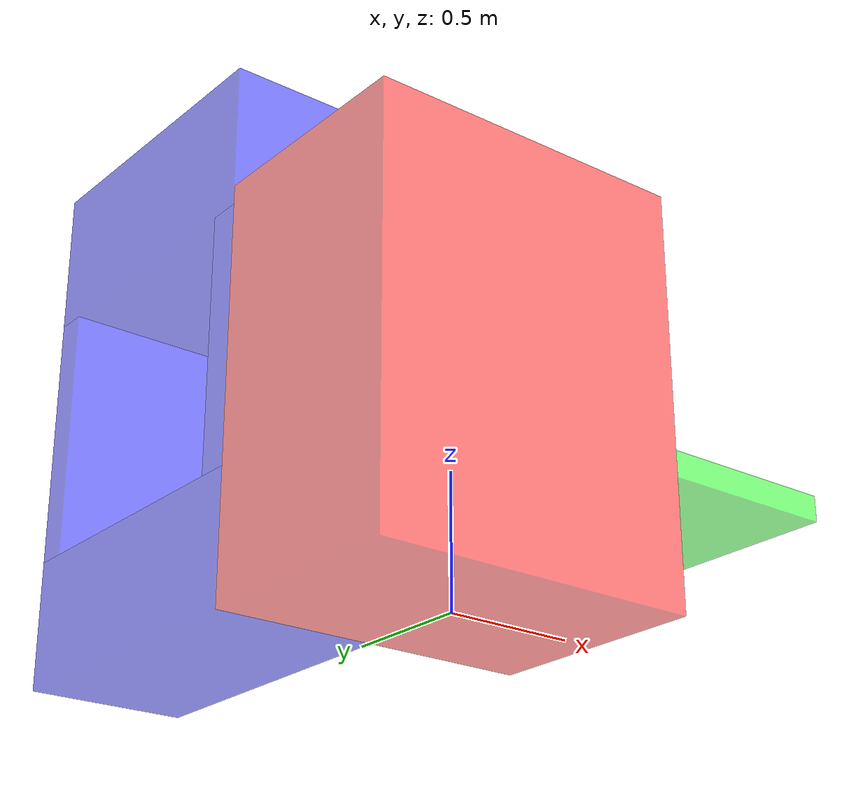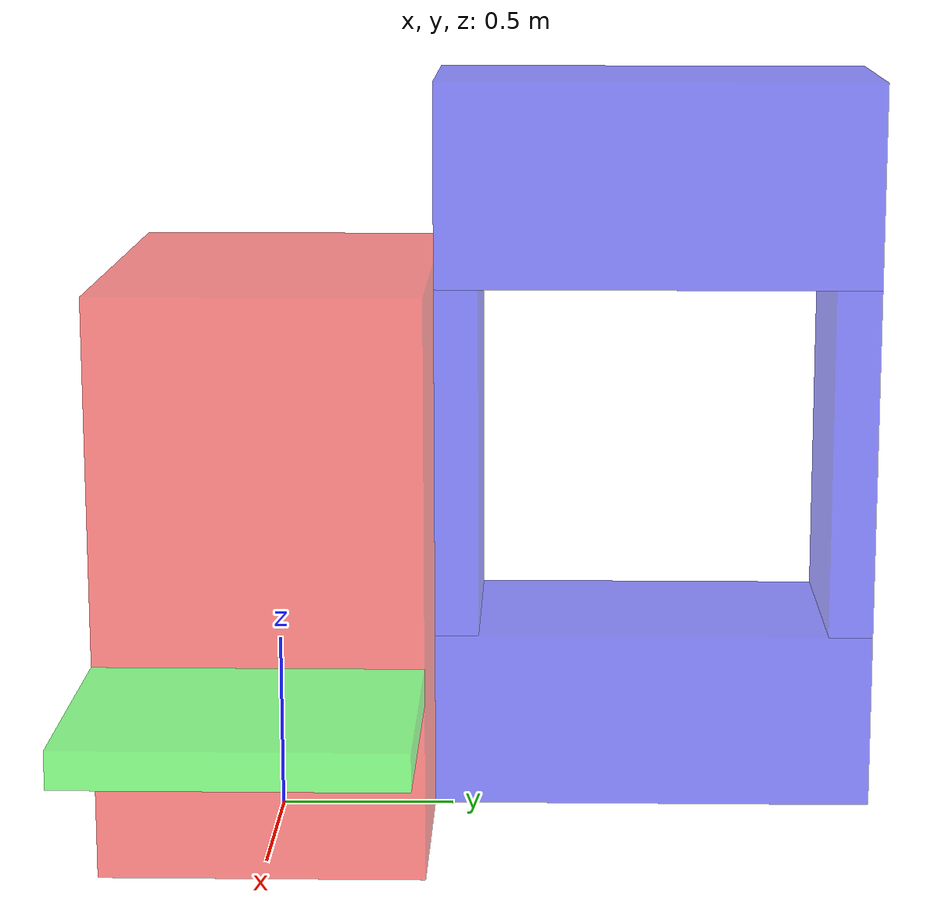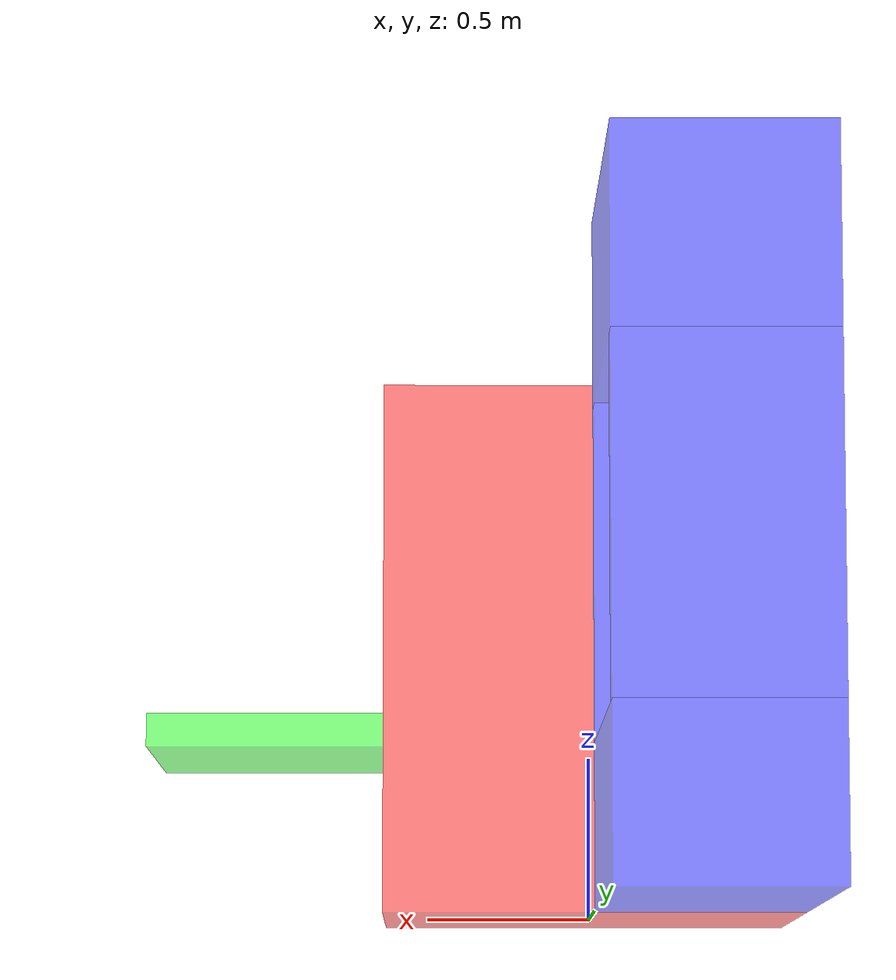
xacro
<?xml version="1.0"?>
<robot xmlns:xacro="http://wiki.ros.org/xacro" name="mocks">

    <link name="trainer">
      <visual>
        <origin xyz="0.0 0.0 ${1.6002/2}" rpy="0 0 0"/>
        <geometry>
          <box size="1.27 0.89535 1.6002"/>
        </geometry>
        <material name="red">
          <color rgba="1.0 0 0 0.5"/>
        </material>
      </visual>
      <collision>
        <origin xyz="0.0 0.0 ${1.6002/2}" rpy="0 0 0"/>
        <geometry>
          <box size="1.27 0.89535 1.6002"/>
        </geometry>
        <material name="red">
          <color rgba="1.0 0 0 0.5"/>
        </material>
      </collision>
    </link>

    <joint name="trainer_bench" type="fixed">
      <parent link="trainer"/>
      <child link="bench"/>
      <origin xyz="${1.27/2 + 0.7112/2} 0.0 0.4969" rpy="0 0 0"/>
    </joint>

    <link name="bench">
      <visual>
        <origin xyz="0.0 0.0 ${0.10/2}" rpy="0 0 0"/>
        <geometry>
          <box size="0.7112 0.89535 0.10"/>
        </geometry>
        <material name="green">
          <color rgba="0.0 1.0 0 0.5"/>
        </material>
      </visual>
      <collision>
        <origin xyz="0.0 0.0 ${0.10/2}" rpy="0 0 0"/>
        <geometry>
          <box size="0.7112 0.89535 0.10"/>
        </geometry>
        <material name="green">
          <color rgba="0.0 1.0 0 0.5"/>
        </material>
      </collision>
    </link>

    <joint name="trainer_hatch" type="fixed">
      <parent link="trainer"/>
      <child link="hatch_bottom"/>
      <origin xyz="${-1.27/2 + 0.635/2} ${0.89535/2 + 1.27/2} 0.0" rpy="0 0 0"/>
    </joint>

    <link name="hatch_bottom">
      <visual>
        <origin xyz="0.0 0.0 ${0.508/2}" rpy="0 0 0"/>
        <geometry>
          <box size="0.635 1.27 0.508"/>
        </geometry>
        <material name="blue">
          <color rgba="0.0 0 1.0 0.5"/>
        </material>
      </visual>
      <collision>
        <origin xyz="0.0 0.0 ${0.508/2}" rpy="0 0 0"/>
        <geometry>
          <box size="0.635 1.27 0.508"/>
        </geometry>
        <material name="blue">
          <color rgba="0.0 0 1.0 0.5"/>
        </material>
      </collision>
    </link>

    <joint name="hatch_bottom_left" type="fixed">
      <parent link="hatch_bottom"/>
      <child link="hatch_left"/>
      <origin xyz="0.0 ${0.127/2 - 0.635} 0.508" rpy="0 0 0"/>
    </joint>

    <link name="hatch_left">
      <visual>
        <origin xyz="0.0 0.0 ${1.016/2}" rpy="0 0 0"/>
        <geometry>
          <box size="0.635 0.127 1.016"/>
        </geometry>
        <material name="blue">
          <color rgba="0.0 0 1.0 0.5"/>
        </material>
      </visual>
      <collision>
        <origin xyz="0.0 0.0 ${1.016/2}" rpy="0 0 0"/>
        <geometry>
          <box size="0.635 0.127 1.016"/>
        </geometry>
        <material name="blue">
          <color rgba="0.0 0 1.0 0.5"/>
        </material>
      </collision>
    </link>

    <joint name="hatch_bottom_right" type="fixed">
      <parent link="hatch_bottom"/>
      <child link="hatch_right"/>
      <origin xyz="0.0 ${-0.127/2 + 0.635} 0.508" rpy="0 0 0"/>
    </joint>

    <link name="hatch_right">
      <visual>
        <origin xyz="0.0 0.0 ${1.016/2}" rpy="0 0 0"/>
        <geometry>
          <box size="0.635 0.127 1.016"/>
        </geometry>
        <material name="blue">
          <color rgba="0.0 0 1.0 0.5"/>
        </material>
      </visual>
      <collision>
        <origin xyz="0.0 0.0 ${1.016/2}" rpy="0 0 0"/>
        <geometry>
          <box size="0.635 0.127 1.016"/>
        </geometry>
        <material name="blue">
          <color rgba="0.0 0 1.0 0.5"/>
        </material>
      </collision>
    </link>

    <joint name="hatch_bottom_top" type="fixed">
      <parent link="hatch_bottom"/>
      <child link="hatch_top"/>
      <origin xyz="0.0 0.0 1.524" rpy="0 0 0"/>
    </joint>

    <link name="hatch_top">
      <visual>
        <origin xyz="0.0 0.0 ${0.5842/2}" rpy="0 0 0"/>
        <geometry>
          <box size="0.635 1.27 0.5842"/>
        </geometry>
        <material name="blue">
          <color rgba="0.0 0 1.0 0.5"/>
        </material>
      </visual>
      <collision>
        <origin xyz="0.0 0.0 ${0.5842/2}" rpy="0 0 0"/>
        <geometry>
          <box size="0.635 1.27 0.5842"/>
        </geometry>
        <material name="blue">
          <color rgba="0.0 0 1.0 0.5"/>
        </material>
      </collision>
    </link>

</robot>
